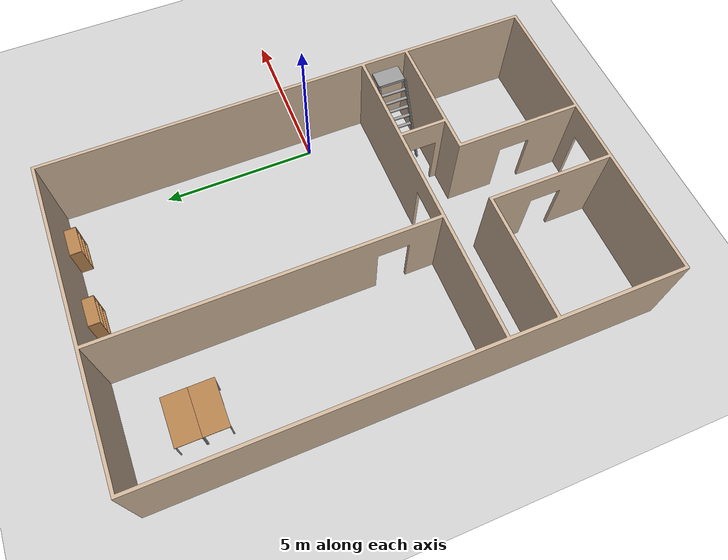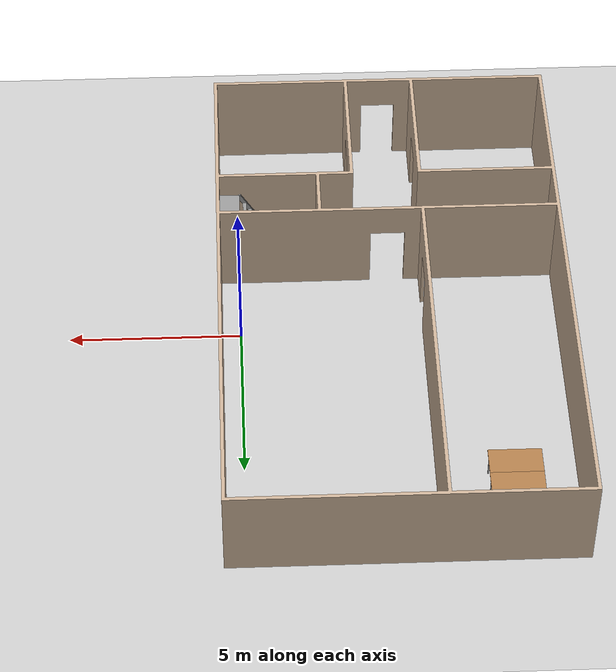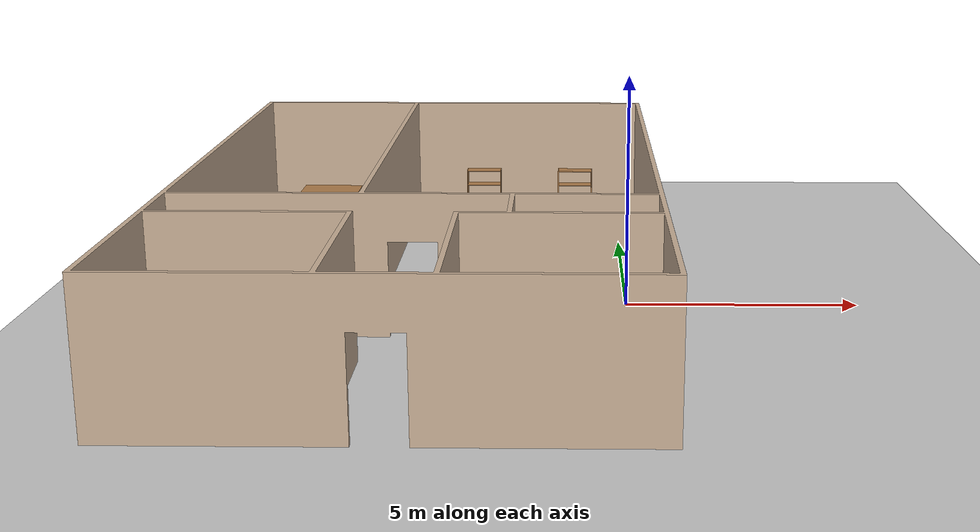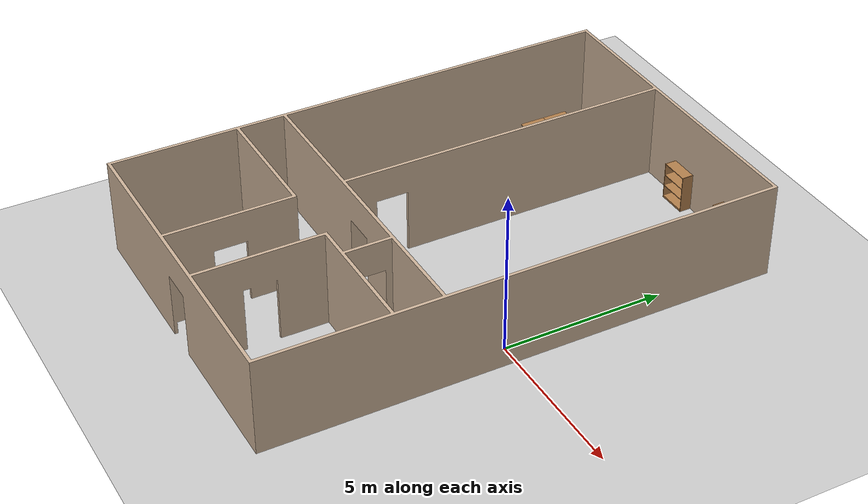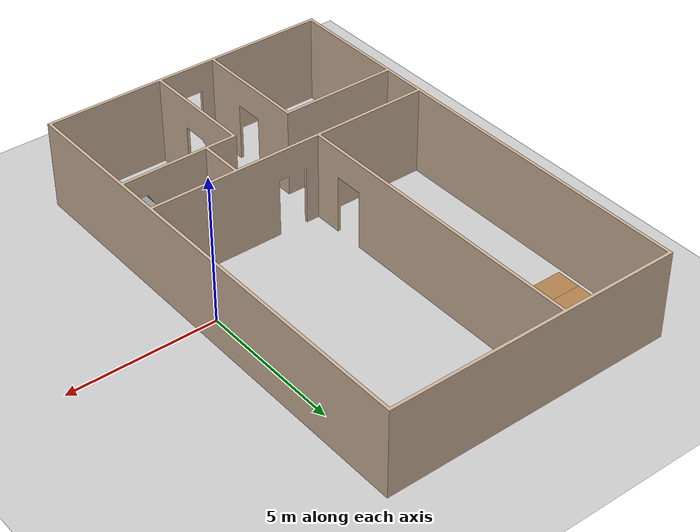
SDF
<sdf version="1.7">
 <world name="house_interior">
  <light name="sun" type="directional">
   <pose>0 0 10 0 -0 0</pose>
   <diffuse>0.8 0.8 0.8 1</diffuse>
   <specular>0.2 0.2 0.2 1</specular>
   <attenuation>
    <range>1000</range>
    <constant>0.9</constant>
    <linear>0.01</linear>
    <quadratic>0.001</quadratic>
   </attenuation>
   <direction>-0.5 0.1 -0.9</direction>
   <spot><inner_angle>0</inner_angle><outer_angle>0</outer_angle><falloff>0</falloff></spot>
  </light>
  <model name="ground_plane">
   <static>1</static>
   <link name="link">
    <collision name="collision">
     <geometry><plane><normal>0 0 1</normal><size>100 100</size></plane></geometry>
     <surface><friction><ode><mu>100</mu><mu2>50</mu2></ode></friction></surface>
    </collision>
    <visual name="visual">
     <cast_shadows>0</cast_shadows>
     <geometry><plane><normal>0 0 1</normal><size>100 100</size></plane></geometry>
     <material>
      <script><uri>file://media/materials/scripts/gazebo.material</uri><name>Gazebo/Grey</name></script>
     </material>
    </visual>
   </link>
  </model>
  <gravity>0 0 -9.8</gravity>
  <magnetic_field>6e-06 2.3e-05 -4.2e-05</magnetic_field>
  <atmosphere type="adiabatic"/>
  <physics type="ode">
   <max_step_size>0.001</max_step_size>
   <real_time_factor>1</real_time_factor>
   <real_time_update_rate>1000</real_time_update_rate>
  </physics>
  <scene><ambient>0.4 0.4 0.4 1</ambient><background>0.7 0.7 0.7 1</background><shadows>1</shadows></scene>
  <audio><device>default</device></audio>
  <spherical_coordinates>
   <surface_model>EARTH_WGS84</surface_model>
   <latitude_deg>0</latitude_deg>
   <longitude_deg>0</longitude_deg>
   <elevation>0</elevation>
   <heading_deg>0</heading_deg>
  </spherical_coordinates>
  <model name="table">
   <static>1</static>
   <link name="link">
    <collision name="surface">
     <pose>0 0 1 0 -0 0</pose>
     <geometry><box><size>1.5 0.8 0.03</size></box></geometry>
     <surface><friction><ode><mu>0.6</mu><mu2>0.6</mu2></ode></friction></surface>
    </collision>
    <visual name="visual1">
     <pose>0 0 1 0 -0 0</pose>
     <geometry><box><size>1.5 0.8 0.03</size></box></geometry>
     <material>
      <script><uri>file://media/materials/scripts/gazebo.material</uri><name>Gazebo/Wood</name></script>
     </material>
    </visual>
    <collision name="front_left_leg">
     <pose>0.68 0.38 0.5 0 -0 0</pose>
     <geometry><cylinder><radius>0.02</radius><length>1</length></cylinder></geometry>
    </collision>
    <visual name="front_left_leg">
     <pose>0.68 0.38 0.5 0 -0 0</pose>
     <geometry><cylinder><radius>0.02</radius><length>1</length></cylinder></geometry>
     <material>
      <script><uri>file://media/materials/scripts/gazebo.material</uri><name>Gazebo/Grey</name></script>
     </material>
    </visual>
    <collision name="front_right_leg">
     <pose>0.68 -0.38 0.5 0 -0 0</pose>
     <geometry><cylinder><radius>0.02</radius><length>1</length></cylinder></geometry>
    </collision>
    <visual name="front_right_leg">
     <pose>0.68 -0.38 0.5 0 -0 0</pose>
     <geometry><cylinder><radius>0.02</radius><length>1</length></cylinder></geometry>
     <material>
      <script><uri>file://media/materials/scripts/gazebo.material</uri><name>Gazebo/Grey</name></script>
     </material>
    </visual>
    <collision name="back_right_leg">
     <pose>-0.68 -0.38 0.5 0 -0 0</pose>
     <geometry><cylinder><radius>0.02</radius><length>1</length></cylinder></geometry>
    </collision>
    <visual name="back_right_leg">
     <pose>-0.68 -0.38 0.5 0 -0 0</pose>
     <geometry><cylinder><radius>0.02</radius><length>1</length></cylinder></geometry>
     <material>
      <script><uri>file://media/materials/scripts/gazebo.material</uri><name>Gazebo/Grey</name></script>
     </material>
    </visual>
    <collision name="back_left_leg">
     <pose>-0.68 0.38 0.5 0 -0 0</pose>
     <geometry><cylinder><radius>0.02</radius><length>1</length></cylinder></geometry>
    </collision>
    <visual name="back_left_leg">
     <pose>-0.68 0.38 0.5 0 -0 0</pose>
     <geometry><cylinder><radius>0.02</radius><length>1</length></cylinder></geometry>
     <material>
      <script><uri>file://media/materials/scripts/gazebo.material</uri><name>Gazebo/Grey</name></script>
     </material>
    </visual>
   </link>
   <pose>-7.46885 6.52456 0 0 -0 0</pose>
  </model>
  <model name="bookshelf">
   <static>1</static>
   <link name="link">
    <inertial><mass>1</mass></inertial>
    <collision name="back">
     <pose>0 0.005 0.6 0 -0 0</pose>
     <geometry><box><size>0.9 0.01 1.2</size></box></geometry>
    </collision>
    <visual name="visual1">
     <pose>0 0.005 0.6 0 -0 0</pose>
     <geometry><box><size>0.9 0.01 1.2</size></box></geometry>
     <material>
      <script><uri>file://media/materials/scripts/gazebo.material</uri><name>Gazebo/Wood</name></script>
     </material>
    </visual>
    <collision name="left_side">
     <pose>0.45 -0.195 0.6 0 -0 0</pose>
     <geometry><box><size>0.02 0.4 1.2</size></box></geometry>
    </collision>
    <visual name="visual2">
     <pose>0.45 -0.195 0.6 0 -0 0</pose>
     <geometry><box><size>0.02 0.4 1.2</size></box></geometry>
     <material>
      <script><uri>file://media/materials/scripts/gazebo.material</uri><name>Gazebo/Wood</name></script>
     </material>
    </visual>
    <collision name="right_side">
     <pose>-0.45 -0.195 0.6 0 -0 0</pose>
     <geometry><box><size>0.02 0.4 1.2</size></box></geometry>
    </collision>
    <visual name="visual3">
     <pose>-0.45 -0.195 0.6 0 -0 0</pose>
     <geometry><box><size>0.02 0.4 1.2</size></box></geometry>
     <material>
      <script><uri>file://media/materials/scripts/gazebo.material</uri><name>Gazebo/Wood</name></script>
     </material>
    </visual>
    <collision name="bottom">
     <pose>0 -0.195 0.03 0 -0 0</pose>
     <geometry><box><size>0.88 0.4 0.06</size></box></geometry>
    </collision>
    <visual name="visual4">
     <pose>0 -0.195 0.03 0 -0 0</pose>
     <geometry><box><size>0.88 0.4 0.06</size></box></geometry>
     <material>
      <script><uri>file://media/materials/scripts/gazebo.material</uri><name>Gazebo/Wood</name></script>
     </material>
    </visual>
    <collision name="top">
     <pose>0 -0.195 1.19 0 -0 0</pose>
     <geometry><box><size>0.88 0.4 0.02</size></box></geometry>
    </collision>
    <visual name="visual5">
     <pose>0 -0.195 1.19 0 -0 0</pose>
     <geometry><box><size>0.88 0.4 0.02</size></box></geometry>
     <material>
      <script><uri>file://media/materials/scripts/gazebo.material</uri><name>Gazebo/Wood</name></script>
     </material>
    </visual>
    <collision name="low_shelf">
     <pose>0 -0.195 0.43 0 -0 0</pose>
     <geometry><box><size>0.88 0.4 0.02</size></box></geometry>
    </collision>
    <visual name="visual6">
     <pose>0 -0.195 0.43 0 -0 0</pose>
     <geometry><box><size>0.88 0.4 0.02</size></box></geometry>
     <material>
      <script><uri>file://media/materials/scripts/gazebo.material</uri><name>Gazebo/Wood</name></script>
     </material>
    </visual>
    <collision name="high_shelf">
     <pose>0 -0.195 0.8 0 -0 0</pose>
     <geometry><box><size>0.88 0.4 0.02</size></box></geometry>
    </collision>
    <visual name="visual7">
     <pose>0 -0.195 0.8 0 -0 0</pose>
     <geometry><box><size>0.88 0.4 0.02</size></box></geometry>
     <material>
      <script><uri>file://media/materials/scripts/gazebo.material</uri><name>Gazebo/Wood</name></script>
     </material>
    </visual>
   </link>
   <pose>-3.55591 8.27448 0 0 -0 0</pose>
  </model>
  <model name="bookshelf_0">
   <static>1</static>
   <link name="link">
    <inertial><mass>1</mass></inertial>
    <collision name="back">
     <pose>0 0.005 0.6 0 -0 0</pose>
     <geometry><box><size>0.9 0.01 1.2</size></box></geometry>
    </collision>
    <visual name="visual1">
     <pose>0 0.005 0.6 0 -0 0</pose>
     <geometry><box><size>0.9 0.01 1.2</size></box></geometry>
     <material>
      <script><uri>file://media/materials/scripts/gazebo.material</uri><name>Gazebo/Wood</name></script>
     </material>
    </visual>
    <collision name="left_side">
     <pose>0.45 -0.195 0.6 0 -0 0</pose>
     <geometry><box><size>0.02 0.4 1.2</size></box></geometry>
    </collision>
    <visual name="visual2">
     <pose>0.45 -0.195 0.6 0 -0 0</pose>
     <geometry><box><size>0.02 0.4 1.2</size></box></geometry>
     <material>
      <script><uri>file://media/materials/scripts/gazebo.material</uri><name>Gazebo/Wood</name></script>
     </material>
    </visual>
    <collision name="right_side">
     <pose>-0.45 -0.195 0.6 0 -0 0</pose>
     <geometry><box><size>0.02 0.4 1.2</size></box></geometry>
    </collision>
    <visual name="visual3">
     <pose>-0.45 -0.195 0.6 0 -0 0</pose>
     <geometry><box><size>0.02 0.4 1.2</size></box></geometry>
     <material>
      <script><uri>file://media/materials/scripts/gazebo.material</uri><name>Gazebo/Wood</name></script>
     </material>
    </visual>
    <collision name="bottom">
     <pose>0 -0.195 0.03 0 -0 0</pose>
     <geometry><box><size>0.88 0.4 0.06</size></box></geometry>
    </collision>
    <visual name="visual4">
     <pose>0 -0.195 0.03 0 -0 0</pose>
     <geometry><box><size>0.88 0.4 0.06</size></box></geometry>
     <material>
      <script><uri>file://media/materials/scripts/gazebo.material</uri><name>Gazebo/Wood</name></script>
     </material>
    </visual>
    <collision name="top">
     <pose>0 -0.195 1.19 0 -0 0</pose>
     <geometry><box><size>0.88 0.4 0.02</size></box></geometry>
    </collision>
    <visual name="visual5">
     <pose>0 -0.195 1.19 0 -0 0</pose>
     <geometry><box><size>0.88 0.4 0.02</size></box></geometry>
     <material>
      <script><uri>file://media/materials/scripts/gazebo.material</uri><name>Gazebo/Wood</name></script>
     </material>
    </visual>
    <collision name="low_shelf">
     <pose>0 -0.195 0.43 0 -0 0</pose>
     <geometry><box><size>0.88 0.4 0.02</size></box></geometry>
    </collision>
    <visual name="visual6">
     <pose>0 -0.195 0.43 0 -0 0</pose>
     <geometry><box><size>0.88 0.4 0.02</size></box></geometry>
     <material>
      <script><uri>file://media/materials/scripts/gazebo.material</uri><name>Gazebo/Wood</name></script>
     </material>
    </visual>
    <collision name="high_shelf">
     <pose>0 -0.195 0.8 0 -0 0</pose>
     <geometry><box><size>0.88 0.4 0.02</size></box></geometry>
    </collision>
    <visual name="visual7">
     <pose>0 -0.195 0.8 0 -0 0</pose>
     <geometry><box><size>0.88 0.4 0.02</size></box></geometry>
     <material>
      <script><uri>file://media/materials/scripts/gazebo.material</uri><name>Gazebo/Wood</name></script>
     </material>
    </visual>
   </link>
   <pose>-1.09501 8.26834 0 0 -0 0</pose>
  </model>
  <model name="ladder_60deg_0rails">
   <static>1</static>
   <link name="step0">
    <pose>0 0.15396 0.266667 0 -0 0</pose>
    <inertial>
     <mass>9.75482</mass>
     <inertia>
      <ixx>0.00957124</ixx>
      <iyy>0.65963</iyy>
      <izz>0.666842</izz>
      <ixy>0</ixy>
      <ixz>0</ixz>
      <iyz>0</iyz>
     </inertia>
    </inertial>
    <collision name="collision"><geometry><box><size>0.9 0.1016 0.0381</size></box></geometry></collision>
    <visual name="visual">
     <geometry><box><size>0.9 0.1016 0.0381</size></box></geometry>
     <material>
      <script><uri>file://media/materials/scripts/gazebo.material</uri><name>Gazebo/Grey</name></script>
     </material>
    </visual>
   </link>
   <link name="step1">
    <pose>0 0.30792 0.533333 0 -0 0</pose>
    <inertial>
     <mass>9.75482</mass>
     <inertia>
      <ixx>0.00957124</ixx>
      <iyy>0.65963</iyy>
      <izz>0.666842</izz>
      <ixy>0</ixy>
      <ixz>0</ixz>
      <iyz>0</iyz>
     </inertia>
    </inertial>
    <collision name="collision"><geometry><box><size>0.9 0.1016 0.0381</size></box></geometry></collision>
    <visual name="visual">
     <geometry><box><size>0.9 0.1016 0.0381</size></box></geometry>
     <material>
      <script><uri>file://media/materials/scripts/gazebo.material</uri><name>Gazebo/Grey</name></script>
     </material>
    </visual>
   </link>
   <link name="step2">
    <pose>0 0.46188 0.8 0 -0 0</pose>
    <inertial>
     <mass>9.75482</mass>
     <inertia>
      <ixx>0.00957124</ixx>
      <iyy>0.65963</iyy>
      <izz>0.666842</izz>
      <ixy>0</ixy>
      <ixz>0</ixz>
      <iyz>0</iyz>
     </inertia>
    </inertial>
    <collision name="collision"><geometry><box><size>0.9 0.1016 0.0381</size></box></geometry></collision>
    <visual name="visual">
     <geometry><box><size>0.9 0.1016 0.0381</size></box></geometry>
     <material>
      <script><uri>file://media/materials/scripts/gazebo.material</uri><name>Gazebo/Grey</name></script>
     </material>
    </visual>
   </link>
   <link name="step3">
    <pose>0 0.61584 1.06667 0 -0 0</pose>
    <inertial>
     <mass>9.75482</mass>
     <inertia>
      <ixx>0.00957124</ixx>
      <iyy>0.65963</iyy>
      <izz>0.666842</izz>
      <ixy>0</ixy>
      <ixz>0</ixz>
      <iyz>0</iyz>
     </inertia>
    </inertial>
    <collision name="collision"><geometry><box><size>0.9 0.1016 0.0381</size></box></geometry></collision>
    <visual name="visual">
     <geometry><box><size>0.9 0.1016 0.0381</size></box></geometry>
     <material>
      <script><uri>file://media/materials/scripts/gazebo.material</uri><name>Gazebo/Grey</name></script>
     </material>
    </visual>
   </link>
   <link name="step4">
    <pose>0 0.7698 1.33333 0 -0 0</pose>
    <inertial>
     <mass>9.75482</mass>
     <inertia>
      <ixx>0.00957124</ixx>
      <iyy>0.65963</iyy>
      <izz>0.666842</izz>
      <ixy>0</ixy>
      <ixz>0</ixz>
      <iyz>0</iyz>
     </inertia>
    </inertial>
    <collision name="collision"><geometry><box><size>0.9 0.1016 0.0381</size></box></geometry></collision>
    <visual name="visual">
     <geometry><box><size>0.9 0.1016 0.0381</size></box></geometry>
     <material>
      <script><uri>file://media/materials/scripts/gazebo.material</uri><name>Gazebo/Grey</name></script>
     </material>
    </visual>
   </link>
   <link name="step5">
    <pose>0 0.92376 1.6 0 -0 0</pose>
    <inertial>
     <mass>9.75482</mass>
     <inertia>
      <ixx>0.00957124</ixx>
      <iyy>0.65963</iyy>
      <izz>0.666842</izz>
      <ixy>0</ixy>
      <ixz>0</ixz>
      <iyz>0</iyz>
     </inertia>
    </inertial>
    <collision name="collision"><geometry><box><size>0.9 0.1016 0.0381</size></box></geometry></collision>
    <visual name="visual">
     <geometry><box><size>0.9 0.1016 0.0381</size></box></geometry>
     <material>
      <script><uri>file://media/materials/scripts/gazebo.material</uri><name>Gazebo/Grey</name></script>
     </material>
    </visual>
   </link>
   <link name="step6">
    <pose>0 1.07772 1.86667 0 -0 0</pose>
    <inertial>
     <mass>9.75482</mass>
     <inertia>
      <ixx>0.00957124</ixx>
      <iyy>0.65963</iyy>
      <izz>0.666842</izz>
      <ixy>0</ixy>
      <ixz>0</ixz>
      <iyz>0</iyz>
     </inertia>
    </inertial>
    <collision name="collision"><geometry><box><size>0.9 0.1016 0.0381</size></box></geometry></collision>
    <visual name="visual">
     <geometry><box><size>0.9 0.1016 0.0381</size></box></geometry>
     <material>
      <script><uri>file://media/materials/scripts/gazebo.material</uri><name>Gazebo/Grey</name></script>
     </material>
    </visual>
   </link>
   <link name="step7">
    <pose>0 1.23168 2.13333 0 -0 0</pose>
    <inertial>
     <mass>9.75482</mass>
     <inertia>
      <ixx>0.00957124</ixx>
      <iyy>0.65963</iyy>
      <izz>0.666842</izz>
      <ixy>0</ixy>
      <ixz>0</ixz>
      <iyz>0</iyz>
     </inertia>
    </inertial>
    <collision name="collision"><geometry><box><size>0.9 0.1016 0.0381</size></box></geometry></collision>
    <visual name="visual">
     <geometry><box><size>0.9 0.1016 0.0381</size></box></geometry>
     <material>
      <script><uri>file://media/materials/scripts/gazebo.material</uri><name>Gazebo/Grey</name></script>
     </material>
    </visual>
   </link>
   <link name="landing">
    <pose>0 1.68564 2.4 0 -0 0</pose>
    <inertial>
     <mass>57.6072</mass>
     <inertia><ixx>1.73518</ixx><iyy>3.89545</iyy><izz>5.6167</izz><ixy>0</ixy><ixz>0</ixz><iyz>0</iyz></inertia>
    </inertial>
    <collision name="collision"><geometry><box><size>0.9 0.6 0.1016</size></box></geometry></collision>
    <visual name="visual">
     <geometry><box><size>0.9 0.6 0.1016</size></box></geometry>
     <material>
      <script><uri>file://media/materials/scripts/gazebo.material</uri><name>Gazebo/Grey</name></script>
     </material>
    </visual>
   </link>
   <link name="left_side_wall">
    <pose>-0.45 0.69282 1.2 1.0472 -0 0</pose>
    <collision name="collision"><geometry><box><size>0.0508 2.85128 0.13</size></box></geometry></collision>
    <visual name="visual">
     <geometry><box><size>0.0508 2.85128 0.13</size></box></geometry>
     <material>
      <script><uri>file://media/materials/scripts/gazebo.material</uri><name>Gazebo/Grey</name></script>
     </material>
    </visual>
   </link>
   <link name="right_side_wall">
    <pose>0.45 0.69282 1.2 1.0472 -0 0</pose>
    <collision name="collision"><geometry><box><size>0.0508 2.85128 0.13</size></box></geometry></collision>
    <visual name="visual">
     <geometry><box><size>0.0508 2.85128 0.13</size></box></geometry>
     <material>
      <script><uri>file://media/materials/scripts/gazebo.material</uri><name>Gazebo/Grey</name></script>
     </material>
    </visual>
   </link>
   <pose>-1.43725 -2.91526 0 0 0 -1.57889</pose>
  </model>
  <model name="table_0">
   <static>1</static>
   <link name="link">
    <collision name="surface">
     <pose>0 0 1 0 -0 0</pose>
     <geometry><box><size>1.5 0.8 0.03</size></box></geometry>
     <surface><friction><ode><mu>0.6</mu><mu2>0.6</mu2></ode></friction></surface>
    </collision>
    <visual name="visual1">
     <pose>0 0 1 0 -0 0</pose>
     <geometry><box><size>1.5 0.8 0.03</size></box></geometry>
     <material>
      <script><uri>file://media/materials/scripts/gazebo.material</uri><name>Gazebo/Wood</name></script>
     </material>
    </visual>
    <collision name="front_left_leg">
     <pose>0.68 0.38 0.5 0 -0 0</pose>
     <geometry><cylinder><radius>0.02</radius><length>1</length></cylinder></geometry>
    </collision>
    <visual name="front_left_leg">
     <pose>0.68 0.38 0.5 0 -0 0</pose>
     <geometry><cylinder><radius>0.02</radius><length>1</length></cylinder></geometry>
     <material>
      <script><uri>file://media/materials/scripts/gazebo.material</uri><name>Gazebo/Grey</name></script>
     </material>
    </visual>
    <collision name="front_right_leg">
     <pose>0.68 -0.38 0.5 0 -0 0</pose>
     <geometry><cylinder><radius>0.02</radius><length>1</length></cylinder></geometry>
    </collision>
    <visual name="front_right_leg">
     <pose>0.68 -0.38 0.5 0 -0 0</pose>
     <geometry><cylinder><radius>0.02</radius><length>1</length></cylinder></geometry>
     <material>
      <script><uri>file://media/materials/scripts/gazebo.material</uri><name>Gazebo/Grey</name></script>
     </material>
    </visual>
    <collision name="back_right_leg">
     <pose>-0.68 -0.38 0.5 0 -0 0</pose>
     <geometry><cylinder><radius>0.02</radius><length>1</length></cylinder></geometry>
    </collision>
    <visual name="back_right_leg">
     <pose>-0.68 -0.38 0.5 0 -0 0</pose>
     <geometry><cylinder><radius>0.02</radius><length>1</length></cylinder></geometry>
     <material>
      <script><uri>file://media/materials/scripts/gazebo.material</uri><name>Gazebo/Grey</name></script>
     </material>
    </visual>
    <collision name="back_left_leg">
     <pose>-0.68 0.38 0.5 0 -0 0</pose>
     <geometry><cylinder><radius>0.02</radius><length>1</length></cylinder></geometry>
    </collision>
    <visual name="back_left_leg">
     <pose>-0.68 0.38 0.5 0 -0 0</pose>
     <geometry><cylinder><radius>0.02</radius><length>1</length></cylinder></geometry>
     <material>
      <script><uri>file://media/materials/scripts/gazebo.material</uri><name>Gazebo/Grey</name></script>
     </material>
    </visual>
   </link>
   <pose>-7.47146 5.73164 0 0 -0 0</pose>
  </model>
  <model name="house_walls_0">
   <link name="link_2">
    <inertial>
     <mass>1</mass>
     <inertia>
      <ixx>0.166667</ixx>
      <ixy>0</ixy>
      <ixz>0</ixz>
      <iyy>0.166667</iyy>
      <iyz>0</iyz>
      <izz>0.166667</izz>
     </inertia>
    </inertial>
    <pose>1e-06 -2e-06 0 0 -0 0</pose>
    <visual name="visual">
     <geometry><mesh><uri>model://house_walls.dae</uri><scale>1 1 1</scale></mesh></geometry>
     <material>
      <ambient>0.5 0.4 0.3 1</ambient>
      <diffuse>0.8 0.7 0.6 1</diffuse>
      <specular>0.3 0.3 0.3 1</specular>
      <emissive>0.1 0.1 0.1 1</emissive>
      <shader type="pixel"/>
      <script><name>ModelPreview_3::link_2::visual_MATERIAL_</name><uri>__default__</uri></script>
     </material>
    </visual>
    <collision name="collision">
     <geometry><mesh><uri>model://house_walls.dae</uri><scale>1 1 1</scale></mesh></geometry>
     <surface>
      <friction>
       <ode><mu>1</mu><mu2>1</mu2><fdir1>0 0 0</fdir1><slip1>0</slip1><slip2>0</slip2></ode>
       <torsional>
        <coefficient>1</coefficient>
        <patch_radius>0</patch_radius>
        <surface_radius>0</surface_radius>
        <use_patch_radius>1</use_patch_radius>
        <ode><slip>0</slip></ode>
       </torsional>
      </friction>
      <bounce><restitution_coefficient>0</restitution_coefficient><threshold>1e+06</threshold></bounce>
      <contact>
       <collide_without_contact>0</collide_without_contact>
       <collide_without_contact_bitmask>1</collide_without_contact_bitmask>
       <collide_bitmask>1</collide_bitmask>
       <ode>
        <soft_cfm>0</soft_cfm>
        <soft_erp>0.2</soft_erp>
        <kp>1e+13</kp>
        <kd>1</kd>
        <max_vel>0.01</max_vel>
        <min_depth>0</min_depth>
       </ode>
       <bullet>
        <split_impulse>1</split_impulse>
        <split_impulse_penetration_threshold>-0.01</split_impulse_penetration_threshold>
        <soft_cfm>0</soft_cfm>
        <soft_erp>0.2</soft_erp>
        <kp>1e+13</kp>
        <kd>1</kd>
       </bullet>
      </contact>
     </surface>
    </collision>
   </link>
   <static>1</static>
   <pose>-4.37432 0.346559 0 0 -0 0</pose>
  </model>
 </world>
</sdf>
